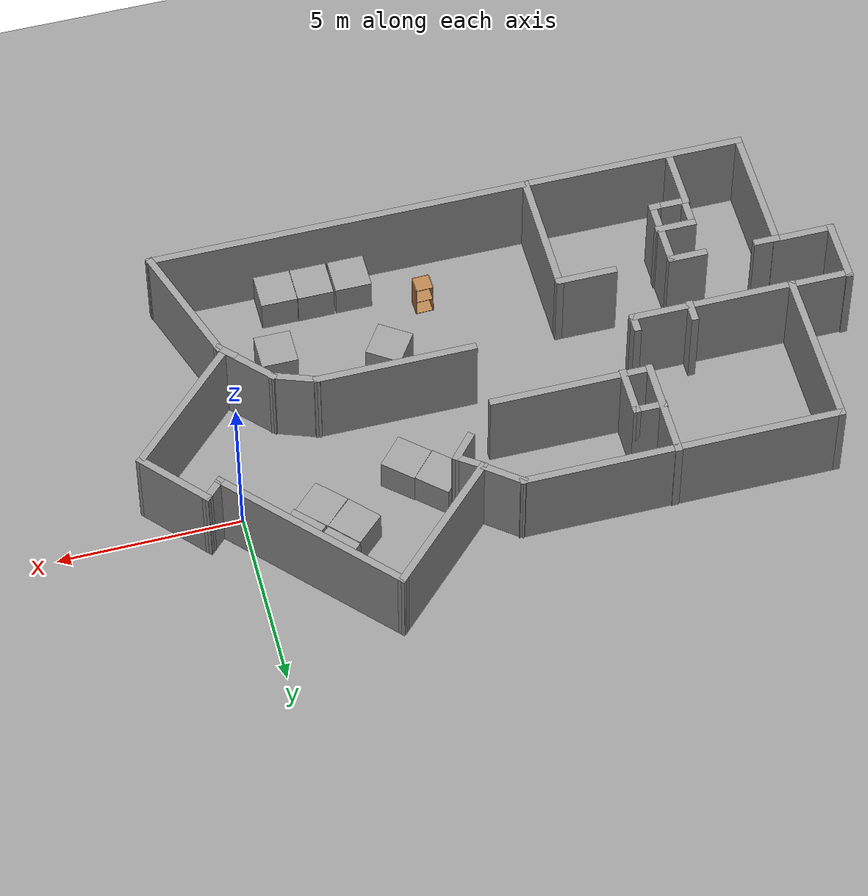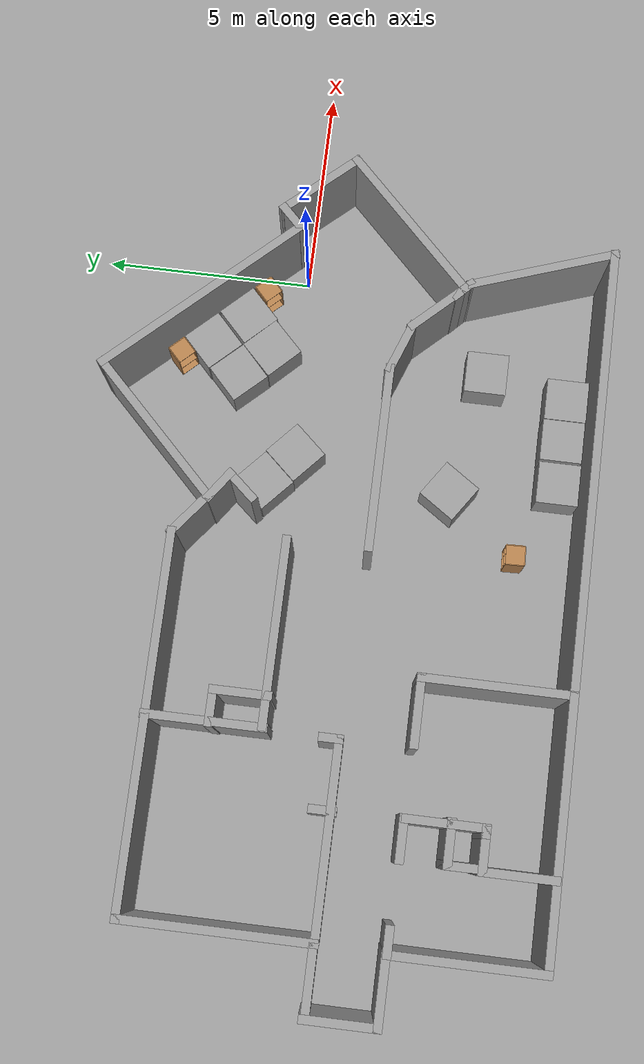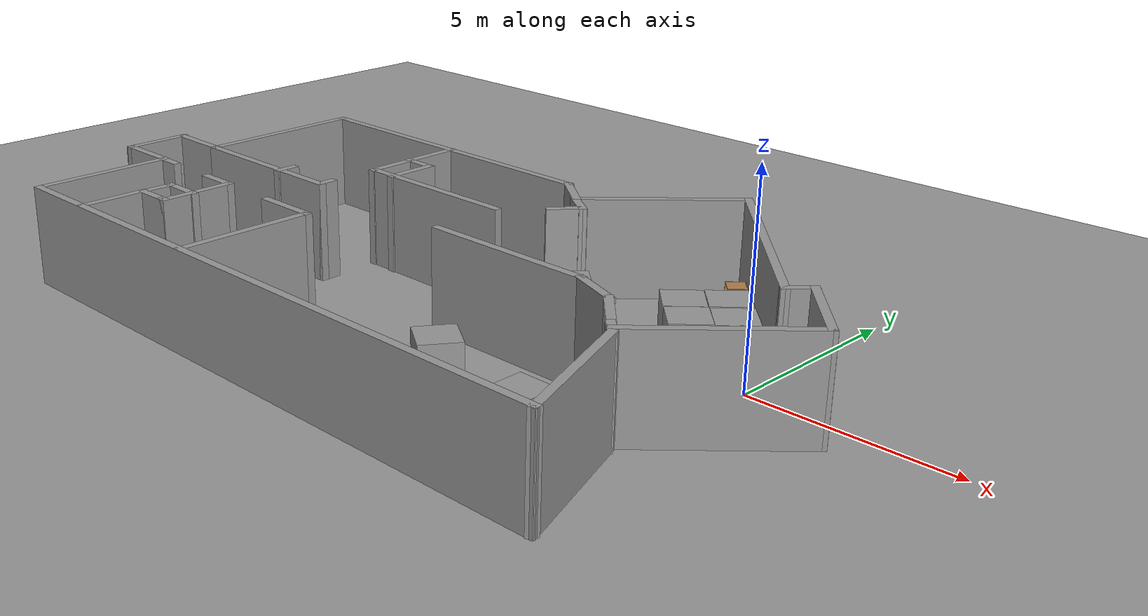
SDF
<sdf version="1.4">
 <world name="default">
  <model name="ground_plane_0">
   <static>1</static>
   <link name="link">
    <collision name="collision">
     <geometry><plane><normal>0 0 1</normal><size>100 100</size></plane></geometry>
     <surface><friction><ode><mu>100</mu><mu2>50</mu2></ode></friction></surface>
    </collision>
    <visual name="visual">
     <cast_shadows>0</cast_shadows>
     <geometry><plane><normal>0 0 1</normal><size>100 100</size></plane></geometry>
     <material>
      <script><uri>file://media/materials/scripts/gazebo.material</uri><name>Gazebo/Grey</name></script>
     </material>
    </visual>
    <velocity_decay><linear>0</linear><angular>0</angular></velocity_decay>
   </link>
   <pose>0.497681 0 0 0 -0 0</pose>
  </model>
  <model name="roy4">
   <link name="Wall_0">
    <collision name="Wall_0_Collision">
     <geometry><box><size>1.81822 0.2 2.5</size></box></geometry>
     <pose>0 0 1.25 0 -0 0</pose>
    </collision>
    <visual name="Wall_0_Visual">
     <pose>0 0 1.25 0 -0 0</pose>
     <geometry><box><size>1.81822 0.2 2.5</size></box></geometry>
     <material>
      <script><uri>file://media/materials/scripts/gazebo.material</uri><name>Gazebo/Grey</name></script>
     </material>
    </visual>
    <velocity_decay><linear>0</linear><angular>0</angular></velocity_decay>
    <pose>-18.2093 -1.86186 0 0 0 -1.5708</pose>
   </link>
   <link name="Wall_1">
    <collision name="Wall_1_Collision">
     <geometry><box><size>1.73731 0.2 2.5</size></box></geometry>
     <pose>0 0 1.25 0 -0 0</pose>
    </collision>
    <visual name="Wall_1_Visual">
     <pose>0 0 1.25 0 -0 0</pose>
     <geometry><box><size>1.73731 0.2 2.5</size></box></geometry>
     <material>
      <script><uri>file://media/materials/scripts/gazebo.material</uri><name>Gazebo/Grey</name></script>
     </material>
    </visual>
    <velocity_decay><linear>0</linear><angular>0</angular></velocity_decay>
    <pose>-17.4407 -2.67097 0 0 -0 0</pose>
   </link>
   <link name="Wall_10">
    <collision name="Wall_10_Collision">
     <geometry><box><size>4.52875 0.2 2.5</size></box></geometry>
     <pose>0 0 1.25 0 -0 0</pose>
    </collision>
    <visual name="Wall_10_Visual">
     <pose>0 0 1.25 0 -0 0</pose>
     <geometry><box><size>4.52875 0.2 2.5</size></box></geometry>
     <material>
      <script><uri>file://media/materials/scripts/gazebo.material</uri><name>Gazebo/Grey</name></script>
     </material>
    </visual>
    <velocity_decay><linear>0</linear><angular>0</angular></velocity_decay>
    <pose>-16.6315 1.07117 0 0 -0 1.5708</pose>
   </link>
   <link name="Wall_11">
    <collision name="Wall_11_Collision">
     <geometry><box><size>8.81704 0.2 2.5</size></box></geometry>
     <pose>0 0 1.25 0 -0 0</pose>
    </collision>
    <visual name="Wall_11_Visual">
     <pose>0 0 1.25 0 -0 0</pose>
     <geometry><box><size>8.81704 0.2 2.5</size></box></geometry>
     <material>
      <script><uri>file://media/materials/scripts/gazebo.material</uri><name>Gazebo/Grey</name></script>
     </material>
    </visual>
    <velocity_decay><linear>0</linear><angular>0</angular></velocity_decay>
    <pose>-12.323 3.23554 0 0 -0 0</pose>
   </link>
   <link name="Wall_12">
    <collision name="Wall_12_Collision">
     <geometry><box><size>1.34948 0.2 2.5</size></box></geometry>
     <pose>0 0 1.25 0 -0 0</pose>
    </collision>
    <visual name="Wall_12_Visual">
     <pose>0 0 1.25 0 -0 0</pose>
     <geometry><box><size>1.34948 0.2 2.5</size></box></geometry>
     <material>
      <script><uri>file://media/materials/scripts/gazebo.material</uri><name>Gazebo/Grey</name></script>
     </material>
    </visual>
    <velocity_decay><linear>0</linear><angular>0</angular></velocity_decay>
    <pose>-7.56237 2.88072 0 0 0 -0.665383</pose>
   </link>
   <link name="Wall_13">
    <collision name="Wall_13_Collision">
     <geometry><box><size>4.25051 0.2 2.5</size></box></geometry>
     <pose>0 0 1.25 0 -0 0</pose>
    </collision>
    <visual name="Wall_13_Visual">
     <pose>0 0 1.25 0 -0 0</pose>
     <geometry><box><size>4.25051 0.2 2.5</size></box></geometry>
     <material>
      <script><uri>file://media/materials/scripts/gazebo.material</uri><name>Gazebo/Grey</name></script>
     </material>
    </visual>
    <velocity_decay><linear>0</linear><angular>0</angular></velocity_decay>
    <pose>-5.67816 3.95797 0 0 -0 0.785398</pose>
   </link>
   <link name="Wall_14">
    <collision name="Wall_14_Collision">
     <geometry><box><size>5.8449 0.2 2.5</size></box></geometry>
     <pose>0 0 1.25 0 -0 0</pose>
    </collision>
    <visual name="Wall_14_Visual">
     <pose>0 0 1.25 0 -0 0</pose>
     <geometry><box><size>5.8449 0.2 2.5</size></box></geometry>
     <material>
      <script><uri>file://media/materials/scripts/gazebo.material</uri><name>Gazebo/Grey</name></script>
     </material>
    </visual>
    <velocity_decay><linear>0</linear><angular>0</angular></velocity_decay>
    <pose>-2.32907 3.3185 0 0 0 -0.824116</pose>
   </link>
   <link name="Wall_15">
    <collision name="Wall_15_Collision">
     <geometry><box><size>0.805312 0.2 2.5</size></box></geometry>
     <pose>0 0 1.25 0 -0 0</pose>
    </collision>
    <visual name="Wall_15_Visual">
     <pose>0 0 1.25 0 -0 0</pose>
     <geometry><box><size>0.805312 0.2 2.5</size></box></geometry>
     <material>
      <script><uri>file://media/materials/scripts/gazebo.material</uri><name>Gazebo/Grey</name></script>
     </material>
    </visual>
    <velocity_decay><linear>0</linear><angular>0</angular></velocity_decay>
    <pose>-0.198034 1.46098 0 0 -0 0.785398</pose>
   </link>
   <link name="Wall_16">
    <collision name="Wall_16_Collision">
     <geometry><box><size>2.30527 0.2 2.5</size></box></geometry>
     <pose>0 0 1.25 0 -0 0</pose>
    </collision>
    <visual name="Wall_16_Visual">
     <pose>0 0 1.25 0 -0 0</pose>
     <geometry><box><size>2.30527 0.2 2.5</size></box></geometry>
     <material>
      <script><uri>file://media/materials/scripts/gazebo.material</uri><name>Gazebo/Grey</name></script>
     </material>
    </visual>
    <velocity_decay><linear>0</linear><angular>0</angular></velocity_decay>
    <pose>0.716942 0.889618 0 0 0 -0.842126</pose>
   </link>
   <link name="Wall_17">
    <collision name="Wall_17_Collision">
     <geometry><box><size>4.28091 0.2 2.5</size></box></geometry>
     <pose>0 0 1.25 0 -0 0</pose>
    </collision>
    <visual name="Wall_17_Visual">
     <pose>0 0 1.25 0 -0 0</pose>
     <geometry><box><size>4.28091 0.2 2.5</size></box></geometry>
     <material>
      <script><uri>file://media/materials/scripts/gazebo.material</uri><name>Gazebo/Grey</name></script>
     </material>
    </visual>
    <velocity_decay><linear>0</linear><angular>0</angular></velocity_decay>
    <pose>-0.024913 -1.33858 0 0 0 -2.35619</pose>
   </link>
   <link name="Wall_18">
    <collision name="Wall_18_Collision">
     <geometry><box><size>0.478047 0.2 2.5</size></box></geometry>
     <pose>0 0 1.25 0 -0 0</pose>
    </collision>
    <visual name="Wall_18_Visual">
     <pose>0 0 1.25 0 -0 0</pose>
     <geometry><box><size>0.478047 0.2 2.5</size></box></geometry>
     <material>
      <script><uri>file://media/materials/scripts/gazebo.material</uri><name>Gazebo/Grey</name></script>
     </material>
    </visual>
    <velocity_decay><linear>0</linear><angular>0</angular></velocity_decay>
    <pose>-1.56604 -2.68309 0 0 -0 2.35619</pose>
   </link>
   <link name="Wall_2">
    <collision name="Wall_2_Collision">
     <geometry><box><size>3.71963 0.2 2.5</size></box></geometry>
     <pose>0 0 1.25 0 -0 0</pose>
    </collision>
    <visual name="Wall_2_Visual">
     <pose>0 0 1.25 0 -0 0</pose>
     <geometry><box><size>3.71963 0.2 2.5</size></box></geometry>
     <material>
      <script><uri>file://media/materials/scripts/gazebo.material</uri><name>Gazebo/Grey</name></script>
     </material>
    </visual>
    <velocity_decay><linear>0</linear><angular>0</angular></velocity_decay>
    <pose>-16.672 -4.43079 0 0 0 -1.5708</pose>
   </link>
   <link name="Wall_20">
    <collision name="Wall_20_Collision">
     <geometry><box><size>0.725923 0.2 2.5</size></box></geometry>
     <pose>0 0 1.25 0 -0 0</pose>
    </collision>
    <visual name="Wall_20_Visual">
     <pose>0 0 1.25 0 -0 0</pose>
     <geometry><box><size>0.725923 0.2 2.5</size></box></geometry>
     <material>
      <script><uri>file://media/materials/scripts/gazebo.material</uri><name>Gazebo/Grey</name></script>
     </material>
    </visual>
    <velocity_decay><linear>0</linear><angular>0</angular></velocity_decay>
    <pose>-16.4029 -2.68936 0 0 -0 0</pose>
   </link>
   <link name="Wall_22">
    <collision name="Wall_22_Collision">
     <geometry><box><size>1.09002 0.2 2.5</size></box></geometry>
     <pose>0 0 1.25 0 -0 0</pose>
    </collision>
    <visual name="Wall_22_Visual">
     <pose>0 0 1.25 0 -0 0</pose>
     <geometry><box><size>1.09002 0.2 2.5</size></box></geometry>
     <material>
      <script><uri>file://media/materials/scripts/gazebo.material</uri><name>Gazebo/Grey</name></script>
     </material>
    </visual>
    <velocity_decay><linear>0</linear><angular>0</angular></velocity_decay>
    <pose>-14.1981 -2.72981 0 0 -0 0</pose>
   </link>
   <link name="Wall_24">
    <collision name="Wall_24_Collision">
     <geometry><box><size>1.98005 0.2 2.5</size></box></geometry>
     <pose>0 0 1.25 0 -0 0</pose>
    </collision>
    <visual name="Wall_24_Visual">
     <pose>0 0 1.25 0 -0 0</pose>
     <geometry><box><size>1.98005 0.2 2.5</size></box></geometry>
     <material>
      <script><uri>file://media/materials/scripts/gazebo.material</uri><name>Gazebo/Grey</name></script>
     </material>
    </visual>
    <velocity_decay><linear>0</linear><angular>0</angular></velocity_decay>
    <pose>-13.7531 -3.66029 0 0 0 -1.5708</pose>
   </link>
   <link name="Wall_25">
    <collision name="Wall_25_Collision">
     <geometry><box><size>0.321367 0.2 2.5</size></box></geometry>
     <pose>0 0 1.25 0 -0 0</pose>
    </collision>
    <visual name="Wall_25_Visual">
     <pose>0 0 1.25 0 -0 0</pose>
     <geometry><box><size>0.321367 0.2 2.5</size></box></geometry>
     <material>
      <script><uri>file://media/materials/scripts/gazebo.material</uri><name>Gazebo/Grey</name></script>
     </material>
    </visual>
    <velocity_decay><linear>0</linear><angular>0</angular></velocity_decay>
    <pose>-13.8138 -4.55032 0 0 -0 3.14159</pose>
   </link>
   <link name="Wall_27">
    <collision name="Wall_27_Collision">
     <geometry><box><size>1.09002 0.2 2.5</size></box></geometry>
     <pose>0 0 1.25 0 -0 0</pose>
    </collision>
    <visual name="Wall_27_Visual">
     <pose>0 0 1.25 0 -0 0</pose>
     <geometry><box><size>1.09002 0.2 2.5</size></box></geometry>
     <material>
      <script><uri>file://media/materials/scripts/gazebo.material</uri><name>Gazebo/Grey</name></script>
     </material>
    </visual>
    <velocity_decay><linear>0</linear><angular>0</angular></velocity_decay>
    <pose>-14.2386 -4.55032 0 0 -0 3.14159</pose>
   </link>
   <link name="Wall_28">
    <collision name="Wall_28_Collision">
     <geometry><box><size>1.81822 0.2 2.5</size></box></geometry>
     <pose>0 0 1.25 0 -0 0</pose>
    </collision>
    <visual name="Wall_28_Visual">
     <pose>0 0 1.25 0 -0 0</pose>
     <geometry><box><size>1.81822 0.2 2.5</size></box></geometry>
     <material>
      <script><uri>file://media/materials/scripts/gazebo.material</uri><name>Gazebo/Grey</name></script>
     </material>
    </visual>
    <velocity_decay><linear>0</linear><angular>0</angular></velocity_decay>
    <pose>-14.6836 -5.35943 0 0 0 -1.5708</pose>
   </link>
   <link name="Wall_3">
    <collision name="Wall_3_Collision">
     <geometry><box><size>16.6654 0.2 2.5</size></box></geometry>
     <pose>0 0 1.25 0 -0 0</pose>
    </collision>
    <visual name="Wall_3_Visual">
     <pose>0 0 1.25 0 -0 0</pose>
     <geometry><box><size>16.6654 0.2 2.5</size></box></geometry>
     <material>
      <script><uri>file://media/materials/scripts/gazebo.material</uri><name>Gazebo/Grey</name></script>
     </material>
    </visual>
    <velocity_decay><linear>0</linear><angular>0</angular></velocity_decay>
    <pose>-8.43929 -6.19061 0 0 -0 0</pose>
   </link>
   <link name="Wall_30">
    <collision name="Wall_30_Collision">
     <geometry><box><size>0.9282 0.2 2.5</size></box></geometry>
     <pose>0 0 1.25 0 -0 0</pose>
    </collision>
    <visual name="Wall_30_Visual">
     <pose>0 0 1.25 0 -0 0</pose>
     <geometry><box><size>0.9282 0.2 2.5</size></box></geometry>
     <material>
      <script><uri>file://media/materials/scripts/gazebo.material</uri><name>Gazebo/Grey</name></script>
     </material>
    </visual>
    <velocity_decay><linear>0</linear><angular>0</angular></velocity_decay>
    <pose>-14.6431 -4.14576 0 0 -0 1.5708</pose>
   </link>
   <link name="Wall_31">
    <collision name="Wall_31_Collision">
     <geometry><box><size>1.13048 0.2 2.5</size></box></geometry>
     <pose>0 0 1.25 0 -0 0</pose>
    </collision>
    <visual name="Wall_31_Visual">
     <pose>0 0 1.25 0 -0 0</pose>
     <geometry><box><size>1.13048 0.2 2.5</size></box></geometry>
     <material>
      <script><uri>file://media/materials/scripts/gazebo.material</uri><name>Gazebo/Grey</name></script>
     </material>
    </visual>
    <velocity_decay><linear>0</linear><angular>0</angular></velocity_decay>
    <pose>-14.1779 -3.78166 0 0 -0 0</pose>
   </link>
   <link name="Wall_33">
    <collision name="Wall_33_Collision">
     <geometry><box><size>1.69686 0.2 2.5</size></box></geometry>
     <pose>0 0 1.25 0 -0 0</pose>
    </collision>
    <visual name="Wall_33_Visual">
     <pose>0 0 1.25 0 -0 0</pose>
     <geometry><box><size>1.69686 0.2 2.5</size></box></geometry>
     <material>
      <script><uri>file://media/materials/scripts/gazebo.material</uri><name>Gazebo/Grey</name></script>
     </material>
    </visual>
    <velocity_decay><linear>0</linear><angular>0</angular></velocity_decay>
    <pose>-11.3864 -2.77027 0 0 -0 0</pose>
   </link>
   <link name="Wall_34">
    <collision name="Wall_34_Collision">
     <geometry><box><size>3.59827 0.2 2.5</size></box></geometry>
     <pose>0 0 1.25 0 -0 0</pose>
    </collision>
    <visual name="Wall_34_Visual">
     <pose>0 0 1.25 0 -0 0</pose>
     <geometry><box><size>3.59827 0.2 2.5</size></box></geometry>
     <material>
      <script><uri>file://media/materials/scripts/gazebo.material</uri><name>Gazebo/Grey</name></script>
     </material>
    </visual>
    <velocity_decay><linear>0</linear><angular>0</angular></velocity_decay>
    <pose>-10.638 -4.4694 0 0 0 -1.5708</pose>
   </link>
   <link name="Wall_36">
    <collision name="Wall_36_Collision">
     <geometry><box><size>4.60966 0.2 2.5</size></box></geometry>
     <pose>0 0 1.25 0 -0 0</pose>
    </collision>
    <visual name="Wall_36_Visual">
     <pose>0 0 1.25 0 -0 0</pose>
     <geometry><box><size>4.60966 0.2 2.5</size></box></geometry>
     <material>
      <script><uri>file://media/materials/scripts/gazebo.material</uri><name>Gazebo/Grey</name></script>
     </material>
    </visual>
    <velocity_decay><linear>0</linear><angular>0</angular></velocity_decay>
    <pose>-14.4206 -1.11159 0 0 -0 0</pose>
   </link>
   <link name="Wall_37">
    <collision name="Wall_37_Collision">
     <geometry><box><size>0.5641 0.2 2.5</size></box></geometry>
     <pose>0 0 1.25 0 -0 0</pose>
    </collision>
    <visual name="Wall_37_Visual">
     <pose>0 0 1.25 0 -0 0</pose>
     <geometry><box><size>0.5641 0.2 2.5</size></box></geometry>
     <material>
      <script><uri>file://media/materials/scripts/gazebo.material</uri><name>Gazebo/Grey</name></script>
     </material>
    </visual>
    <velocity_decay><linear>0</linear><angular>0</angular></velocity_decay>
    <pose>-12.2158 -0.929541 0 0 -0 1.5708</pose>
   </link>
   <link name="Wall_39">
    <collision name="Wall_39_Collision">
     <geometry><box><size>0.645011 0.2 2.5</size></box></geometry>
     <pose>0 0 1.25 0 -0 0</pose>
    </collision>
    <visual name="Wall_39_Visual">
     <pose>0 0 1.25 0 -0 0</pose>
     <geometry><box><size>0.645011 0.2 2.5</size></box></geometry>
     <material>
      <script><uri>file://media/materials/scripts/gazebo.material</uri><name>Gazebo/Grey</name></script>
     </material>
    </visual>
    <velocity_decay><linear>0</linear><angular>0</angular></velocity_decay>
    <pose>-13.7935 -0.929541 0 0 -0 1.5708</pose>
   </link>
   <link name="Wall_4">
    <collision name="Wall_4_Collision">
     <geometry><box><size>3.66716 0.2 2.5</size></box></geometry>
     <pose>0 0 1.25 0 -0 0</pose>
    </collision>
    <visual name="Wall_4_Visual">
     <pose>0 0 1.25 0 -0 0</pose>
     <geometry><box><size>3.66716 0.2 2.5</size></box></geometry>
     <material>
      <script><uri>file://media/materials/scripts/gazebo.material</uri><name>Gazebo/Grey</name></script>
     </material>
    </visual>
    <velocity_decay><linear>0</linear><angular>0</angular></velocity_decay>
    <pose>-0.772961 -4.55216 0 0 -0 1.90362</pose>
   </link>
   <link name="Wall_41">
    <collision name="Wall_41_Collision">
     <geometry><box><size>2.87038 0.2 2.5</size></box></geometry>
     <pose>0 0 1.25 0 -0 0</pose>
    </collision>
    <visual name="Wall_41_Visual">
     <pose>0 0 1.25 0 -0 0</pose>
     <geometry><box><size>2.87038 0.2 2.5</size></box></geometry>
     <material>
      <script><uri>file://media/materials/scripts/gazebo.material</uri><name>Gazebo/Grey</name></script>
     </material>
    </visual>
    <velocity_decay><linear>0</linear><angular>0</angular></velocity_decay>
    <pose>-12.1753 1.92242 0 0 0 -1.5708</pose>
   </link>
   <link name="Wall_5">
    <collision name="Wall_5_Collision">
     <geometry><box><size>1.91734 0.2 2.5</size></box></geometry>
     <pose>0 0 1.25 0 -0 0</pose>
    </collision>
    <visual name="Wall_5_Visual">
     <pose>0 0 1.25 0 -0 0</pose>
     <geometry><box><size>1.91734 0.2 2.5</size></box></geometry>
     <material>
      <script><uri>file://media/materials/scripts/gazebo.material</uri><name>Gazebo/Grey</name></script>
     </material>
    </visual>
    <velocity_decay><linear>0</linear><angular>0</angular></velocity_decay>
    <pose>-1.92595 -2.28665 0 0 -0 2.32287</pose>
   </link>
   <link name="Wall_50">
    <collision name="Wall_50_Collision">
     <geometry><box><size>4.44784 0.2 2.5</size></box></geometry>
     <pose>0 0 1.25 0 -0 0</pose>
    </collision>
    <visual name="Wall_50_Visual">
     <pose>0 0 1.25 0 -0 0</pose>
     <geometry><box><size>4.44784 0.2 2.5</size></box></geometry>
     <material>
      <script><uri>file://media/materials/scripts/gazebo.material</uri><name>Gazebo/Grey</name></script>
     </material>
    </visual>
    <velocity_decay><linear>0</linear><angular>0</angular></velocity_decay>
    <pose>-10.0252 0.613532 0 0 -0 0</pose>
   </link>
   <link name="Wall_52">
    <collision name="Wall_52_Collision">
     <geometry><box><size>0.932023 0.2 2.5</size></box></geometry>
     <pose>0 0 1.25 0 -0 0</pose>
    </collision>
    <visual name="Wall_52_Visual">
     <pose>0 0 1.25 0 -0 0</pose>
     <geometry><box><size>0.932023 0.2 2.5</size></box></geometry>
     <material>
      <script><uri>file://media/materials/scripts/gazebo.material</uri><name>Gazebo/Grey</name></script>
     </material>
    </visual>
    <velocity_decay><linear>0</linear><angular>0</angular></velocity_decay>
    <pose>-6.83392 2.29891 0 0 0 -0.614663</pose>
   </link>
   <link name="Wall_53">
    <collision name="Wall_53_Collision">
     <geometry><box><size>0.947911 0.2 2.5</size></box></geometry>
     <pose>0 0 1.25 0 -0 0</pose>
    </collision>
    <visual name="Wall_53_Visual">
     <pose>0 0 1.25 0 -0 0</pose>
     <geometry><box><size>0.947911 0.2 2.5</size></box></geometry>
     <material>
      <script><uri>file://media/materials/scripts/gazebo.material</uri><name>Gazebo/Grey</name></script>
     </material>
    </visual>
    <velocity_decay><linear>0</linear><angular>0</angular></velocity_decay>
    <pose>-6.78115 1.80641 0 0 0 -2.28963</pose>
   </link>
   <link name="Wall_55">
    <collision name="Wall_55_Collision">
     <geometry><box><size>0.938754 0.2 2.5</size></box></geometry>
     <pose>0 0 1.25 0 -0 0</pose>
    </collision>
    <visual name="Wall_55_Visual">
     <pose>0 0 1.25 0 -0 0</pose>
     <geometry><box><size>0.938754 0.2 2.5</size></box></geometry>
     <material>
      <script><uri>file://media/materials/scripts/gazebo.material</uri><name>Gazebo/Grey</name></script>
     </material>
    </visual>
    <velocity_decay><linear>0</linear><angular>0</angular></velocity_decay>
    <pose>-11.8293 1.80641 0 0 -0 0</pose>
   </link>
   <link name="Wall_56">
    <collision name="Wall_56_Collision">
     <geometry><box><size>1.43126 0.2 2.5</size></box></geometry>
     <pose>0 0 1.25 0 -0 0</pose>
    </collision>
    <visual name="Wall_56_Visual">
     <pose>0 0 1.25 0 -0 0</pose>
     <geometry><box><size>1.43126 0.2 2.5</size></box></geometry>
     <material>
      <script><uri>file://media/materials/scripts/gazebo.material</uri><name>Gazebo/Grey</name></script>
     </material>
    </visual>
    <velocity_decay><linear>0</linear><angular>0</angular></velocity_decay>
    <pose>-11.4599 1.19078 0 0 0 -1.5708</pose>
   </link>
   <link name="Wall_6">
    <collision name="Wall_6_Collision">
     <geometry><box><size>1.36481 0.2 2.5</size></box></geometry>
     <pose>0 0 1.25 0 -0 0</pose>
    </collision>
    <visual name="Wall_6_Visual">
     <pose>0 0 1.25 0 -0 0</pose>
     <geometry><box><size>1.36481 0.2 2.5</size></box></geometry>
     <material>
      <script><uri>file://media/materials/scripts/gazebo.material</uri><name>Gazebo/Grey</name></script>
     </material>
    </visual>
    <velocity_decay><linear>0</linear><angular>0</angular></velocity_decay>
    <pose>-3.0587 -1.45731 0 0 -0 2.78689</pose>
   </link>
   <link name="Wall_7">
    <collision name="Wall_7_Collision">
     <geometry><box><size>4.44784 0.2 2.5</size></box></geometry>
     <pose>0 0 1.25 0 -0 0</pose>
    </collision>
    <visual name="Wall_7_Visual">
     <pose>0 0 1.25 0 -0 0</pose>
     <geometry><box><size>4.44784 0.2 2.5</size></box></geometry>
     <material>
      <script><uri>file://media/materials/scripts/gazebo.material</uri><name>Gazebo/Grey</name></script>
     </material>
    </visual>
    <velocity_decay><linear>0</linear><angular>0</angular></velocity_decay>
    <pose>-5.72877 -1.25503 0 0 -0 3.14159</pose>
   </link>
   <link name="Wall_9">
    <collision name="Wall_9_Collision">
     <geometry><box><size>1.77777 0.2 2.5</size></box></geometry>
     <pose>0 0 1.25 0 -0 0</pose>
    </collision>
    <visual name="Wall_9_Visual">
     <pose>0 0 1.25 0 -0 0</pose>
     <geometry><box><size>1.77777 0.2 2.5</size></box></geometry>
     <material>
      <script><uri>file://media/materials/scripts/gazebo.material</uri><name>Gazebo/Grey</name></script>
     </material>
    </visual>
    <velocity_decay><linear>0</linear><angular>0</angular></velocity_decay>
    <pose>-17.4204 -1.09321 0 0 -0 0</pose>
   </link>
   <static>1</static>
   <pose>1 -1 0 0 -0 0</pose>
  </model>
  <model name="unit_box_9_0">
   <pose>-1.97617 2.07085 0.5 0 0 -0.814396</pose>
   <link name="link">
    <inertial>
     <mass>1</mass>
     <inertia><ixx>1</ixx><ixy>0</ixy><ixz>0</ixz><iyy>1</iyy><iyz>0</iyz><izz>1</izz></inertia>
    </inertial>
    <collision name="collision"><geometry><box><size>1 1 1</size></box></geometry></collision>
    <visual name="visual">
     <geometry><box><size>1 1 1</size></box></geometry>
     <material>
      <script><uri>file://media/materials/scripts/gazebo.material</uri><name>Gazebo/Grey</name></script>
     </material>
    </visual>
    <velocity_decay><linear>0</linear><angular>0</angular></velocity_decay>
   </link>
   <static>0</static>
  </model>
  <model name="unit_box_10_0">
   <pose>-2.70319 1.36126 0.5 0 -0 -0.819204</pose>
   <link name="link">
    <inertial>
     <mass>1</mass>
     <inertia><ixx>1</ixx><ixy>0</ixy><ixz>0</ixz><iyy>1</iyy><iyz>0</iyz><izz>1</izz></inertia>
    </inertial>
    <collision name="collision"><geometry><box><size>1 1 1</size></box></geometry></collision>
    <visual name="visual">
     <geometry><box><size>1 1 1</size></box></geometry>
     <material>
      <script><uri>file://media/materials/scripts/gazebo.material</uri><name>Gazebo/Grey</name></script>
     </material>
    </visual>
    <velocity_decay><linear>0</linear><angular>0</angular></velocity_decay>
   </link>
   <static>0</static>
  </model>
  <model name="unit_box_11_0">
   <pose>-1.24431 1.30668 0.5 0 -0 -0.80725</pose>
   <link name="link">
    <inertial>
     <mass>1</mass>
     <inertia><ixx>1</ixx><ixy>0</ixy><ixz>0</ixz><iyy>1</iyy><iyz>0</iyz><izz>1</izz></inertia>
    </inertial>
    <collision name="collision"><geometry><box><size>1 1 1</size></box></geometry></collision>
    <visual name="visual">
     <geometry><box><size>1 1 1</size></box></geometry>
     <material>
      <script><uri>file://media/materials/scripts/gazebo.material</uri><name>Gazebo/Grey</name></script>
     </material>
    </visual>
    <velocity_decay><linear>0</linear><angular>0</angular></velocity_decay>
   </link>
   <static>0</static>
  </model>
  <model name="unit_box_12_0">
   <pose>-1.99615 0.637385 0.5 0 0 -0.795469</pose>
   <link name="link">
    <inertial>
     <mass>1</mass>
     <inertia><ixx>1</ixx><ixy>0</ixy><ixz>0</ixz><iyy>1</iyy><iyz>0</iyz><izz>1</izz></inertia>
    </inertial>
    <collision name="collision"><geometry><box><size>1 1 1</size></box></geometry></collision>
    <visual name="visual">
     <geometry><box><size>1 1 1</size></box></geometry>
     <material>
      <script><uri>file://media/materials/scripts/gazebo.material</uri><name>Gazebo/Grey</name></script>
     </material>
    </visual>
    <velocity_decay><linear>0</linear><angular>0</angular></velocity_decay>
   </link>
   <static>0</static>
  </model>
  <model name="cabinet_1">
   <static>1</static>
   <link name="cabinet_bottom_plate">
    <inertial>
     <pose>0 0 -1 0 -0 0</pose>
     <inertia><ixx>2.05</ixx><ixy>0</ixy><ixz>0</ixz><iyy>2.05</iyy><iyz>0</iyz><izz>2.05</izz></inertia>
     <mass>25</mass>
    </inertial>
    <collision name="cabinet_bottom_plate_geom">
     <pose>0 0 0.01 0 -0 0</pose>
     <geometry><box><size>0.45 0.45 0.02</size></box></geometry>
    </collision>
    <visual name="cabinet_bottom_plate_geom_visual">
     <pose>0 0 0.01 0 -0 0</pose>
     <geometry><box><size>0.45 0.45 0.02</size></box></geometry>
     <material>
      <script><uri>file://media/materials/scripts/gazebo.material</uri><name>Gazebo/Wood</name></script>
     </material>
    </visual>
    <collision name="cabinet_bottom_plate_geom_cabinet_back_plate">
     <pose>0.235 0 0.51 0 -0 0</pose>
     <geometry><box><size>0.02 0.45 1.02</size></box></geometry>
    </collision>
    <visual name="cabinet_bottom_plate_geom_cabinet_back_plate_visual">
     <pose>0.235 0 0.51 0 -0 0</pose>
     <geometry><box><size>0.02 0.45 1.02</size></box></geometry>
     <material>
      <script><uri>file://media/materials/scripts/gazebo.material</uri><name>Gazebo/Wood</name></script>
     </material>
    </visual>
    <collision name="cabinet_bottom_plate_geom_cabinet_left_plate">
     <pose>0 0.235 0.51 0 -0 0</pose>
     <geometry><box><size>0.45 0.02 1.02</size></box></geometry>
    </collision>
    <visual name="cabinet_bottom_plate_geom_cabinet_left_plate_visual">
     <pose>0 0.235 0.51 0 -0 0</pose>
     <geometry><box><size>0.45 0.02 1.02</size></box></geometry>
     <material>
      <script><uri>file://media/materials/scripts/gazebo.material</uri><name>Gazebo/Wood</name></script>
     </material>
    </visual>
    <collision name="cabinet_bottom_plate_geom_cabinet_middle_plate">
     <pose>0 0 0.51 0 -0 0</pose>
     <geometry><box><size>0.45 0.45 0.02</size></box></geometry>
    </collision>
    <visual name="cabinet_bottom_plate_geom_cabinet_middle_plate_visual">
     <pose>0 0 0.51 0 -0 0</pose>
     <geometry><box><size>0.45 0.45 0.02</size></box></geometry>
     <material>
      <script><uri>file://media/materials/scripts/gazebo.material</uri><name>Gazebo/Wood</name></script>
     </material>
    </visual>
    <collision name="cabinet_bottom_plate_geom_cabinet_right_plate">
     <pose>0 -0.235 0.51 0 -0 0</pose>
     <geometry><box><size>0.45 0.02 1.02</size></box></geometry>
    </collision>
    <visual name="cabinet_bottom_plate_geom_cabinet_right_plate_visual">
     <pose>0 -0.235 0.51 0 -0 0</pose>
     <geometry><box><size>0.45 0.02 1.02</size></box></geometry>
     <material>
      <script><uri>file://media/materials/scripts/gazebo.material</uri><name>Gazebo/Wood</name></script>
     </material>
    </visual>
    <collision name="cabinet_bottom_plate_geom_cabinet_top_plate">
     <pose>0 0 1.01 0 -0 0</pose>
     <geometry><box><size>0.45 0.45 0.02</size></box></geometry>
    </collision>
    <visual name="cabinet_bottom_plate_geom_cabinet_top_plate_visual">
     <pose>0 0 1.01 0 -0 0</pose>
     <geometry><box><size>0.45 0.45 0.02</size></box></geometry>
     <material>
      <script><uri>file://media/materials/scripts/gazebo.material</uri><name>Gazebo/Wood</name></script>
     </material>
    </visual>
    <velocity_decay><linear>0</linear><angular>0</angular></velocity_decay>
   </link>
   <pose>-2.31466 2.7902 0 0 -0 0.758249</pose>
  </model>
  <model name="cabinet_2">
   <static>1</static>
   <link name="cabinet_bottom_plate">
    <inertial>
     <pose>0 0 -1 0 -0 0</pose>
     <inertia><ixx>2.05</ixx><ixy>0</ixy><ixz>0</ixz><iyy>2.05</iyy><iyz>0</iyz><izz>2.05</izz></inertia>
     <mass>25</mass>
    </inertial>
    <collision name="cabinet_bottom_plate_geom">
     <pose>0 0 0.01 0 -0 0</pose>
     <geometry><box><size>0.45 0.45 0.02</size></box></geometry>
    </collision>
    <visual name="cabinet_bottom_plate_geom_visual">
     <pose>0 0 0.01 0 -0 0</pose>
     <geometry><box><size>0.45 0.45 0.02</size></box></geometry>
     <material>
      <script><uri>file://media/materials/scripts/gazebo.material</uri><name>Gazebo/Wood</name></script>
     </material>
    </visual>
    <collision name="cabinet_bottom_plate_geom_cabinet_back_plate">
     <pose>0.235 0 0.51 0 -0 0</pose>
     <geometry><box><size>0.02 0.45 1.02</size></box></geometry>
    </collision>
    <visual name="cabinet_bottom_plate_geom_cabinet_back_plate_visual">
     <pose>0.235 0 0.51 0 -0 0</pose>
     <geometry><box><size>0.02 0.45 1.02</size></box></geometry>
     <material>
      <script><uri>file://media/materials/scripts/gazebo.material</uri><name>Gazebo/Wood</name></script>
     </material>
    </visual>
    <collision name="cabinet_bottom_plate_geom_cabinet_left_plate">
     <pose>0 0.235 0.51 0 -0 0</pose>
     <geometry><box><size>0.45 0.02 1.02</size></box></geometry>
    </collision>
    <visual name="cabinet_bottom_plate_geom_cabinet_left_plate_visual">
     <pose>0 0.235 0.51 0 -0 0</pose>
     <geometry><box><size>0.45 0.02 1.02</size></box></geometry>
     <material>
      <script><uri>file://media/materials/scripts/gazebo.material</uri><name>Gazebo/Wood</name></script>
     </material>
    </visual>
    <collision name="cabinet_bottom_plate_geom_cabinet_middle_plate">
     <pose>0 0 0.51 0 -0 0</pose>
     <geometry><box><size>0.45 0.45 0.02</size></box></geometry>
    </collision>
    <visual name="cabinet_bottom_plate_geom_cabinet_middle_plate_visual">
     <pose>0 0 0.51 0 -0 0</pose>
     <geometry><box><size>0.45 0.45 0.02</size></box></geometry>
     <material>
      <script><uri>file://media/materials/scripts/gazebo.material</uri><name>Gazebo/Wood</name></script>
     </material>
    </visual>
    <collision name="cabinet_bottom_plate_geom_cabinet_right_plate">
     <pose>0 -0.235 0.51 0 -0 0</pose>
     <geometry><box><size>0.45 0.02 1.02</size></box></geometry>
    </collision>
    <visual name="cabinet_bottom_plate_geom_cabinet_right_plate_visual">
     <pose>0 -0.235 0.51 0 -0 0</pose>
     <geometry><box><size>0.45 0.02 1.02</size></box></geometry>
     <material>
      <script><uri>file://media/materials/scripts/gazebo.material</uri><name>Gazebo/Wood</name></script>
     </material>
    </visual>
    <collision name="cabinet_bottom_plate_geom_cabinet_top_plate">
     <pose>0 0 1.01 0 -0 0</pose>
     <geometry><box><size>0.45 0.45 0.02</size></box></geometry>
    </collision>
    <visual name="cabinet_bottom_plate_geom_cabinet_top_plate_visual">
     <pose>0 0 1.01 0 -0 0</pose>
     <geometry><box><size>0.45 0.45 0.02</size></box></geometry>
     <material>
      <script><uri>file://media/materials/scripts/gazebo.material</uri><name>Gazebo/Wood</name></script>
     </material>
    </visual>
    <velocity_decay><linear>0</linear><angular>0</angular></velocity_decay>
   </link>
   <pose>-0.534276 0.906568 0 0 -0 0.750541</pose>
  </model>
  <model name="unit_box_13_0">
   <pose>-5.27077 0.410914 0.5 0 -0 -0.736688</pose>
   <link name="link">
    <inertial>
     <mass>1</mass>
     <inertia><ixx>1</ixx><ixy>0</ixy><ixz>0</ixz><iyy>1</iyy><iyz>0</iyz><izz>1</izz></inertia>
    </inertial>
    <collision name="collision"><geometry><box><size>1 1 1</size></box></geometry></collision>
    <visual name="visual">
     <geometry><box><size>1 1 1</size></box></geometry>
     <material>
      <script><uri>file://media/materials/scripts/gazebo.material</uri><name>Gazebo/Grey</name></script>
     </material>
    </visual>
    <velocity_decay><linear>0</linear><angular>0</angular></velocity_decay>
   </link>
   <static>0</static>
  </model>
  <model name="unit_box_14_0">
   <pose>-4.50902 -0.247629 0.5 0 0 -0.732048</pose>
   <link name="link">
    <inertial>
     <mass>1</mass>
     <inertia><ixx>1</ixx><ixy>0</ixy><ixz>0</ixz><iyy>1</iyy><iyz>0</iyz><izz>1</izz></inertia>
    </inertial>
    <collision name="collision"><geometry><box><size>1 1 1</size></box></geometry></collision>
    <visual name="visual">
     <geometry><box><size>1 1 1</size></box></geometry>
     <material>
      <script><uri>file://media/materials/scripts/gazebo.material</uri><name>Gazebo/Grey</name></script>
     </material>
    </visual>
    <velocity_decay><linear>0</linear><angular>0</angular></velocity_decay>
   </link>
   <static>0</static>
  </model>
  <model name="unit_box_15_0">
   <pose>-2.4533 -6.56108 0.5 0 -0 0</pose>
   <link name="link">
    <inertial>
     <mass>1</mass>
     <inertia><ixx>1</ixx><ixy>0</ixy><ixz>0</ixz><iyy>1</iyy><iyz>0</iyz><izz>1</izz></inertia>
    </inertial>
    <collision name="collision"><geometry><box><size>1 1 1</size></box></geometry></collision>
    <visual name="visual">
     <geometry><box><size>1 1 1</size></box></geometry>
     <material>
      <script><uri>file://media/materials/scripts/gazebo.material</uri><name>Gazebo/Grey</name></script>
     </material>
    </visual>
    <velocity_decay><linear>0</linear><angular>0</angular></velocity_decay>
   </link>
   <static>0</static>
  </model>
  <model name="unit_box_16_0">
   <pose>-3.46329 -6.55192 0.5 0 -0 0</pose>
   <link name="link">
    <inertial>
     <mass>1</mass>
     <inertia><ixx>1</ixx><ixy>0</ixy><ixz>0</ixz><iyy>1</iyy><iyz>0</iyz><izz>1</izz></inertia>
    </inertial>
    <collision name="collision"><geometry><box><size>1 1 1</size></box></geometry></collision>
    <visual name="visual">
     <geometry><box><size>1 1 1</size></box></geometry>
     <material>
      <script><uri>file://media/materials/scripts/gazebo.material</uri><name>Gazebo/Grey</name></script>
     </material>
    </visual>
    <velocity_decay><linear>0</linear><angular>0</angular></velocity_decay>
   </link>
   <static>0</static>
  </model>
  <model name="unit_box_17_0">
   <pose>-4.51738 -6.55568 0.5 0 -0 0</pose>
   <link name="link">
    <inertial>
     <mass>1</mass>
     <inertia><ixx>1</ixx><ixy>0</ixy><ixz>0</ixz><iyy>1</iyy><iyz>0</iyz><izz>1</izz></inertia>
    </inertial>
    <collision name="collision"><geometry><box><size>1 1 1</size></box></geometry></collision>
    <visual name="visual">
     <geometry><box><size>1 1 1</size></box></geometry>
     <material>
      <script><uri>file://media/materials/scripts/gazebo.material</uri><name>Gazebo/Grey</name></script>
     </material>
    </visual>
    <velocity_decay><linear>0</linear><angular>0</angular></velocity_decay>
   </link>
   <static>0</static>
  </model>
  <model name="unit_box_18_0">
   <pose>-5 -4 0.5 0 -0 -0.59658</pose>
   <link name="link">
    <inertial>
     <mass>1</mass>
     <inertia><ixx>1</ixx><ixy>0</ixy><ixz>0</ixz><iyy>1</iyy><iyz>0</iyz><izz>1</izz></inertia>
    </inertial>
    <collision name="collision"><geometry><box><size>1 1 1</size></box></geometry></collision>
    <visual name="visual">
     <geometry><box><size>1 1 1</size></box></geometry>
     <material>
      <script><uri>file://media/materials/scripts/gazebo.material</uri><name>Gazebo/Grey</name></script>
     </material>
    </visual>
    <velocity_decay><linear>0</linear><angular>0</angular></velocity_decay>
   </link>
   <static>0</static>
  </model>
  <model name="unit_box_19_0">
   <pose>-2 -4.57718 0.5 0 -0 0</pose>
   <link name="link">
    <inertial>
     <mass>1</mass>
     <inertia><ixx>1</ixx><ixy>0</ixy><ixz>0</ixz><iyy>1</iyy><iyz>0</iyz><izz>1</izz></inertia>
    </inertial>
    <collision name="collision"><geometry><box><size>1 1 1</size></box></geometry></collision>
    <visual name="visual">
     <geometry><box><size>1 1 1</size></box></geometry>
     <material>
      <script><uri>file://media/materials/scripts/gazebo.material</uri><name>Gazebo/Grey</name></script>
     </material>
    </visual>
    <velocity_decay><linear>0</linear><angular>0</angular></velocity_decay>
   </link>
   <static>0</static>
  </model>
  <model name="cabinet_5">
   <static>1</static>
   <link name="cabinet_bottom_plate">
    <inertial>
     <pose>0 0 -1 0 -0 0</pose>
     <inertia><ixx>2.05</ixx><ixy>0</ixy><ixz>0</ixz><iyy>2.05</iyy><iyz>0</iyz><izz>2.05</izz></inertia>
     <mass>25</mass>
    </inertial>
    <collision name="cabinet_bottom_plate_geom">
     <pose>0 0 0.01 0 -0 0</pose>
     <geometry><box><size>0.45 0.45 0.02</size></box></geometry>
    </collision>
    <visual name="cabinet_bottom_plate_geom_visual">
     <pose>0 0 0.01 0 -0 0</pose>
     <geometry><box><size>0.45 0.45 0.02</size></box></geometry>
     <material>
      <script><uri>file://media/materials/scripts/gazebo.material</uri><name>Gazebo/Wood</name></script>
     </material>
    </visual>
    <collision name="cabinet_bottom_plate_geom_cabinet_back_plate">
     <pose>0.235 0 0.51 0 -0 0</pose>
     <geometry><box><size>0.02 0.45 1.02</size></box></geometry>
    </collision>
    <visual name="cabinet_bottom_plate_geom_cabinet_back_plate_visual">
     <pose>0.235 0 0.51 0 -0 0</pose>
     <geometry><box><size>0.02 0.45 1.02</size></box></geometry>
     <material>
      <script><uri>file://media/materials/scripts/gazebo.material</uri><name>Gazebo/Wood</name></script>
     </material>
    </visual>
    <collision name="cabinet_bottom_plate_geom_cabinet_left_plate">
     <pose>0 0.235 0.51 0 -0 0</pose>
     <geometry><box><size>0.45 0.02 1.02</size></box></geometry>
    </collision>
    <visual name="cabinet_bottom_plate_geom_cabinet_left_plate_visual">
     <pose>0 0.235 0.51 0 -0 0</pose>
     <geometry><box><size>0.45 0.02 1.02</size></box></geometry>
     <material>
      <script><uri>file://media/materials/scripts/gazebo.material</uri><name>Gazebo/Wood</name></script>
     </material>
    </visual>
    <collision name="cabinet_bottom_plate_geom_cabinet_middle_plate">
     <pose>0 0 0.51 0 -0 0</pose>
     <geometry><box><size>0.45 0.45 0.02</size></box></geometry>
    </collision>
    <visual name="cabinet_bottom_plate_geom_cabinet_middle_plate_visual">
     <pose>0 0 0.51 0 -0 0</pose>
     <geometry><box><size>0.45 0.45 0.02</size></box></geometry>
     <material>
      <script><uri>file://media/materials/scripts/gazebo.material</uri><name>Gazebo/Wood</name></script>
     </material>
    </visual>
    <collision name="cabinet_bottom_plate_geom_cabinet_right_plate">
     <pose>0 -0.235 0.51 0 -0 0</pose>
     <geometry><box><size>0.45 0.02 1.02</size></box></geometry>
    </collision>
    <visual name="cabinet_bottom_plate_geom_cabinet_right_plate_visual">
     <pose>0 -0.235 0.51 0 -0 0</pose>
     <geometry><box><size>0.45 0.02 1.02</size></box></geometry>
     <material>
      <script><uri>file://media/materials/scripts/gazebo.material</uri><name>Gazebo/Wood</name></script>
     </material>
    </visual>
    <collision name="cabinet_bottom_plate_geom_cabinet_top_plate">
     <pose>0 0 1.01 0 -0 0</pose>
     <geometry><box><size>0.45 0.45 0.02</size></box></geometry>
    </collision>
    <visual name="cabinet_bottom_plate_geom_cabinet_top_plate_visual">
     <pose>0 0 1.01 0 -0 0</pose>
     <geometry><box><size>0.45 0.45 0.02</size></box></geometry>
     <material>
      <script><uri>file://media/materials/scripts/gazebo.material</uri><name>Gazebo/Wood</name></script>
     </material>
    </visual>
    <velocity_decay><linear>0</linear><angular>0</angular></velocity_decay>
   </link>
   <pose>-6.35932 -5.70541 0 0 0 -1.53949</pose>
  </model>
 </world>
</sdf>
